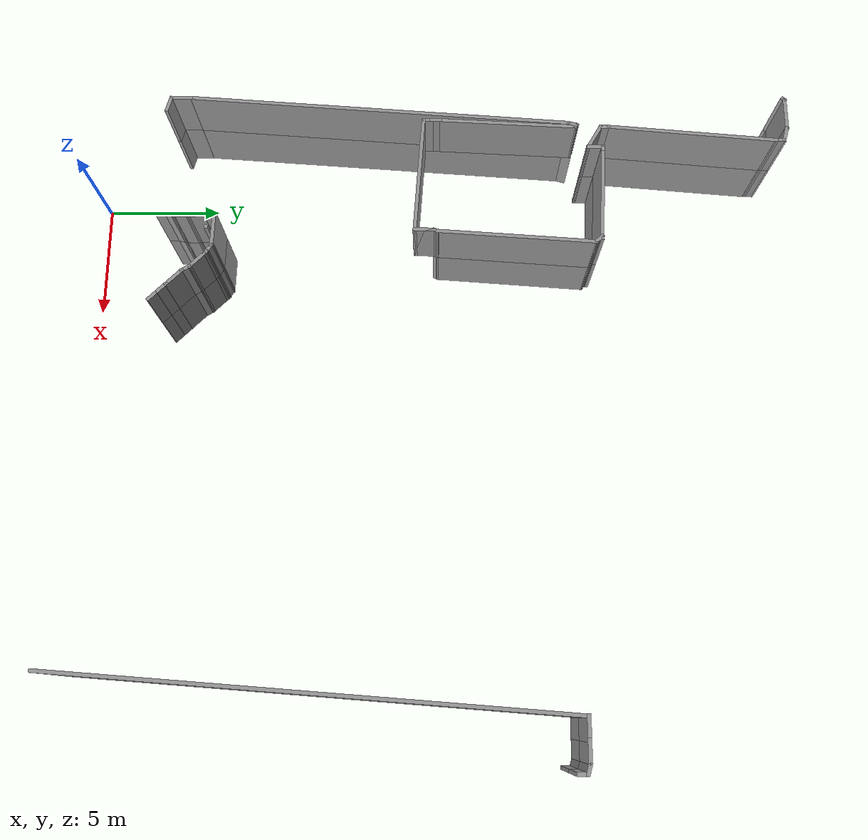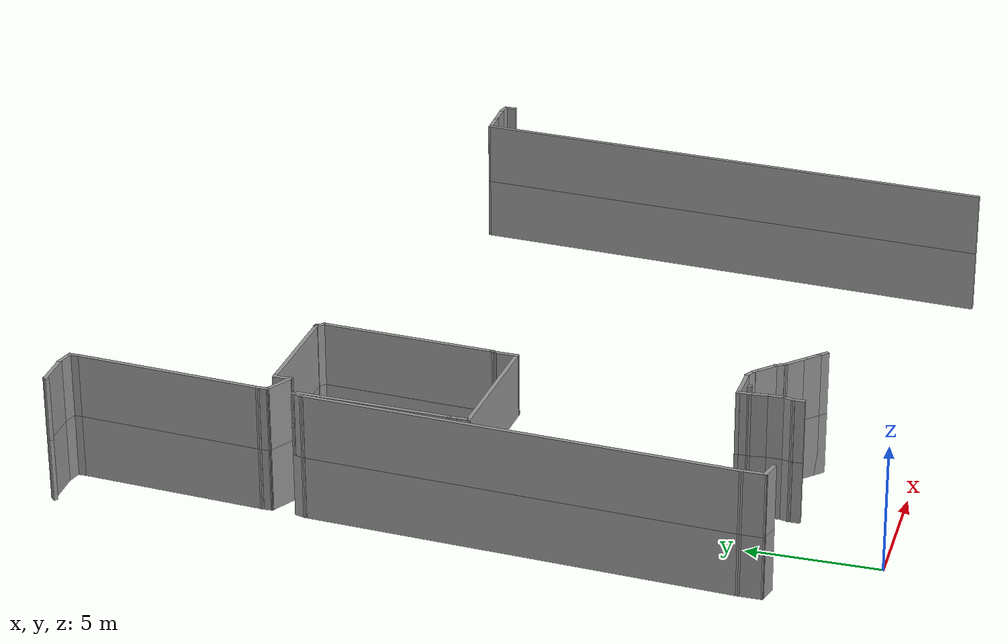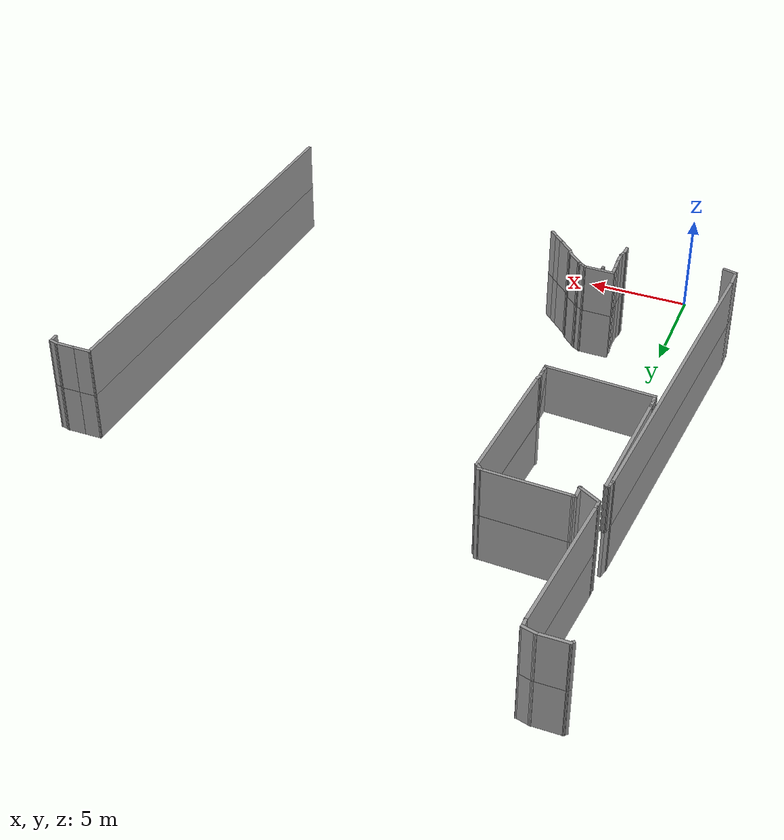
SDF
<sdf version="1.7">
 <model name="EnvDC00">
  <pose>8.4191 -5.62635 0 0 -0 0</pose>
  <link name="Wall_100">
   <collision name="Wall_100_Collision">
    <geometry><box><size>0.15 0.15 2.5</size></box></geometry>
    <pose>0 0 1.25 0 -0 0</pose>
   </collision>
   <visual name="Wall_100_Visual">
    <pose>0 0 1.25 0 -0 0</pose>
    <geometry><box><size>0.15 0.15 2.5</size></box></geometry>
    <material>
     <script><uri>file://media/materials/scripts/gazebo.material</uri><name>Gazebo/Grey</name></script>
     <ambient>1 1 1 1</ambient>
    </material>
    <meta><layer>0</layer></meta>
   </visual>
   <pose>-5.32892 11.2593 0 0 -0 0</pose>
  </link>
  <link name="Wall_102">
   <collision name="Wall_102_Collision">
    <geometry><box><size>0.5 0.15 2.5</size></box></geometry>
    <pose>0 0 1.25 0 -0 0</pose>
   </collision>
   <visual name="Wall_102_Visual">
    <pose>0 0 1.25 0 -0 0</pose>
    <geometry><box><size>0.5 0.15 2.5</size></box></geometry>
    <material>
     <script><uri>file://media/materials/scripts/gazebo.material</uri><name>Gazebo/Grey</name></script>
     <ambient>1 1 1 1</ambient>
    </material>
    <meta><layer>0</layer></meta>
   </visual>
   <pose>-5.88941 11.3173 0 0 -0 -1.5708</pose>
  </link>
  <link name="Wall_103">
   <collision name="Wall_103_Collision">
    <geometry><box><size>0.813803 0.15 2.5</size></box></geometry>
    <pose>0 0 1.25 0 -0 0</pose>
   </collision>
   <visual name="Wall_103_Visual">
    <pose>0 0 1.25 0 -0 0</pose>
    <geometry><box><size>0.813803 0.15 2.5</size></box></geometry>
    <material>
     <script><uri>file://media/materials/scripts/gazebo.material</uri><name>Gazebo/Grey</name></script>
     <ambient>1 1 1 1</ambient>
    </material>
    <meta><layer>0</layer></meta>
   </visual>
   <pose>-5.86023 10.8116 0 0 -0 -1.48755</pose>
  </link>
  <link name="Wall_104">
   <collision name="Wall_104_Collision">
    <geometry><box><size>0.75 0.15 2.5</size></box></geometry>
    <pose>0 0 1.25 0 -0 0</pose>
   </collision>
   <visual name="Wall_104_Visual">
    <pose>0 0 1.25 0 -0 0</pose>
    <geometry><box><size>0.75 0.15 2.5</size></box></geometry>
    <material>
     <script><uri>file://media/materials/scripts/gazebo.material</uri><name>Gazebo/Grey</name></script>
     <ambient>1 1 1 1</ambient>
    </material>
    <meta><layer>0</layer></meta>
   </visual>
   <pose>-5.83264 10.1793 0 0 -0 -1.5708</pose>
  </link>
  <link name="Wall_105">
   <collision name="Wall_105_Collision">
    <geometry><box><size>0.501524 0.15 2.5</size></box></geometry>
    <pose>0 0 1.25 0 -0 0</pose>
   </collision>
   <visual name="Wall_105_Visual">
    <pose>0 0 1.25 0 -0 0</pose>
    <geometry><box><size>0.501524 0.15 2.5</size></box></geometry>
    <material>
     <script><uri>file://media/materials/scripts/gazebo.material</uri><name>Gazebo/Grey</name></script>
     <ambient>1 1 1 1</ambient>
    </material>
    <meta><layer>0</layer></meta>
   </visual>
   <pose>-5.87793 9.70942 0 0 -0 -1.83143</pose>
  </link>
  <link name="Wall_106">
   <collision name="Wall_106_Collision">
    <geometry><box><size>0.5 0.15 2.5</size></box></geometry>
    <pose>0 0 1.25 0 -0 0</pose>
   </collision>
   <visual name="Wall_106_Visual">
    <pose>0 0 1.25 0 -0 0</pose>
    <geometry><box><size>0.5 0.15 2.5</size></box></geometry>
    <material>
     <script><uri>file://media/materials/scripts/gazebo.material</uri><name>Gazebo/Grey</name></script>
     <ambient>1 1 1 1</ambient>
    </material>
    <meta><layer>0</layer></meta>
   </visual>
   <pose>-5.92322 9.3646 0 0 -0 -1.5708</pose>
  </link>
  <link name="Wall_112">
   <collision name="Wall_112_Collision">
    <geometry><box><size>0.75 0.15 2.5</size></box></geometry>
    <pose>0 0 1.25 0 -0 0</pose>
   </collision>
   <visual name="Wall_112_Visual">
    <pose>0 0 1.25 0 -0 0</pose>
    <geometry><box><size>0.75 0.15 2.5</size></box></geometry>
    <material>
     <script><uri>file://media/materials/scripts/gazebo.material</uri><name>Gazebo/Grey</name></script>
     <ambient>1 1 1 1</ambient>
    </material>
    <meta><layer>0</layer></meta>
   </visual>
   <pose>-11.1086 9.30614 0 0 -0 2.87979</pose>
  </link>
  <link name="Wall_114">
   <collision name="Wall_114_Collision">
    <geometry><box><size>0.5 0.15 2.5</size></box></geometry>
    <pose>0 0 1.25 0 -0 0</pose>
   </collision>
   <visual name="Wall_114_Visual">
    <pose>0 0 1.25 0 -0 0</pose>
    <geometry><box><size>0.5 0.15 2.5</size></box></geometry>
    <material>
     <script><uri>file://media/materials/scripts/gazebo.material</uri><name>Gazebo/Grey</name></script>
     <ambient>1 1 1 1</ambient>
    </material>
    <meta><layer>0</layer></meta>
   </visual>
   <pose>-10.2177 26.6696 0 0 -0 -1.8326</pose>
  </link>
  <link name="Wall_115">
   <collision name="Wall_115_Collision">
    <geometry><box><size>16.4563 0.15 2.5</size></box></geometry>
    <pose>0 0 1.25 0 -0 0</pose>
   </collision>
   <visual name="Wall_115_Visual">
    <pose>0 0 1.25 0 -0 0</pose>
    <geometry><box><size>16.4563 0.15 2.5</size></box></geometry>
    <material>
     <script><uri>file://media/materials/scripts/gazebo.material</uri><name>Gazebo/Grey</name></script>
     <ambient>1 1 1 1</ambient>
    </material>
    <meta><layer>0</layer></meta>
   </visual>
   <pose>-10.8307 18.3672 0 0 -0 -1.64048</pose>
  </link>
  <link name="Wall_116">
   <collision name="Wall_116_Collision">
    <geometry><box><size>1 0.15 2.5</size></box></geometry>
    <pose>0 0 1.25 0 -0 0</pose>
   </collision>
   <visual name="Wall_116_Visual">
    <pose>0 0 1.25 0 -0 0</pose>
    <geometry><box><size>1 0.15 2.5</size></box></geometry>
    <material>
     <script><uri>file://media/materials/scripts/gazebo.material</uri><name>Gazebo/Grey</name></script>
     <ambient>1 1 1 1</ambient>
    </material>
    <meta><layer>0</layer></meta>
   </visual>
   <pose>-11.3984 9.80879 0 0 -0 -1.5708</pose>
  </link>
  <link name="Wall_118">
   <collision name="Wall_118_Collision">
    <geometry><box><size>0.5 0.15 2.5</size></box></geometry>
    <pose>0 0 1.25 0 -0 0</pose>
   </collision>
   <visual name="Wall_118_Visual">
    <pose>0 0 1.25 0 -0 0</pose>
    <geometry><box><size>0.5 0.15 2.5</size></box></geometry>
    <material>
     <script><uri>file://media/materials/scripts/gazebo.material</uri><name>Gazebo/Grey</name></script>
     <ambient>1 1 1 1</ambient>
    </material>
    <meta><layer>0</layer></meta>
   </visual>
   <pose>-10.0854 28.0428 0 0 -0 1.5708</pose>
  </link>
  <link name="Wall_119">
   <collision name="Wall_119_Collision">
    <geometry><box><size>7.29114 0.15 2.5</size></box></geometry>
    <pose>0 0 1.25 0 -0 0</pose>
   </collision>
   <visual name="Wall_119_Visual">
    <pose>0 0 1.25 0 -0 0</pose>
    <geometry><box><size>7.29114 0.15 2.5</size></box></geometry>
    <material>
     <script><uri>file://media/materials/scripts/gazebo.material</uri><name>Gazebo/Grey</name></script>
     <ambient>1 1 1 1</ambient>
    </material>
    <meta><layer>0</layer></meta>
   </visual>
   <pose>-9.78492 31.7757 0 0 -0 1.48653</pose>
  </link>
  <link name="Wall_120">
   <collision name="Wall_120_Collision">
    <geometry><box><size>0.5 0.15 2.5</size></box></geometry>
    <pose>0 0 1.25 0 -0 0</pose>
   </collision>
   <visual name="Wall_120_Visual">
    <pose>0 0 1.25 0 -0 0</pose>
    <geometry><box><size>0.5 0.15 2.5</size></box></geometry>
    <material>
     <script><uri>file://media/materials/scripts/gazebo.material</uri><name>Gazebo/Grey</name></script>
     <ambient>1 1 1 1</ambient>
    </material>
    <meta><layer>0</layer></meta>
   </visual>
   <pose>-9.4844 35.5086 0 0 -0 1.5708</pose>
  </link>
  <link name="Wall_122">
   <collision name="Wall_122_Collision">
    <geometry><box><size>0.75 0.15 2.5</size></box></geometry>
    <pose>0 0 1.25 0 -0 0</pose>
   </collision>
   <visual name="Wall_122_Visual">
    <pose>0 0 1.25 0 -0 0</pose>
    <geometry><box><size>0.75 0.15 2.5</size></box></geometry>
    <material>
     <script><uri>file://media/materials/scripts/gazebo.material</uri><name>Gazebo/Grey</name></script>
     <ambient>1 1 1 1</ambient>
    </material>
    <meta><layer>0</layer></meta>
   </visual>
   <pose>-9.77418 35.7612 0 0 -0 2.87979</pose>
  </link>
  <link name="Wall_123">
   <collision name="Wall_123_Collision">
    <geometry><box><size>1.5 0.15 2.5</size></box></geometry>
    <pose>0 0 1.25 0 -0 0</pose>
   </collision>
   <visual name="Wall_123_Visual">
    <pose>0 0 1.25 0 -0 0</pose>
    <geometry><box><size>1.5 0.15 2.5</size></box></geometry>
    <material>
     <script><uri>file://media/materials/scripts/gazebo.material</uri><name>Gazebo/Grey</name></script>
     <ambient>1 1 1 1</ambient>
    </material>
    <meta><layer>0</layer></meta>
   </visual>
   <pose>-10.739 35.8389 0 0 -0 3.14159</pose>
  </link>
  <link name="Wall_124">
   <collision name="Wall_124_Collision">
    <geometry><box><size>0.25 0.15 2.5</size></box></geometry>
    <pose>0 0 1.25 0 -0 0</pose>
   </collision>
   <visual name="Wall_124_Visual">
    <pose>0 0 1.25 0 -0 0</pose>
    <geometry><box><size>0.25 0.15 2.5</size></box></geometry>
    <material>
     <script><uri>file://media/materials/scripts/gazebo.material</uri><name>Gazebo/Grey</name></script>
     <ambient>1 1 1 1</ambient>
    </material>
    <meta><layer>0</layer></meta>
   </visual>
   <pose>-11.4493 35.8035 0 0 -0 -2.35619</pose>
  </link>
  <link name="Wall_254">
   <collision name="Wall_254_Collision">
    <geometry><box><size>1.25 0.15 2.5</size></box></geometry>
    <pose>0 0 1.25 0 -0 0</pose>
   </collision>
   <visual name="Wall_254_Visual">
    <pose>0 0 1.25 0 -0 0</pose>
    <geometry><box><size>1.25 0.15 2.5</size></box></geometry>
    <material>
     <script><uri>file://media/materials/scripts/gazebo.material</uri><name>Gazebo/Grey</name></script>
     <ambient>1 1 1 1</ambient>
    </material>
    <meta><layer>0</layer></meta>
   </visual>
   <pose>-9.60913 27.5928 0 0 -0 -0.523599</pose>
  </link>
  <link name="Wall_255">
   <collision name="Wall_255_Collision">
    <geometry><box><size>0.75 0.15 2.5</size></box></geometry>
    <pose>0 0 1.25 0 -0 0</pose>
   </collision>
   <visual name="Wall_255_Visual">
    <pose>0 0 1.25 0 -0 0</pose>
    <geometry><box><size>0.75 0.15 2.5</size></box></geometry>
    <material>
     <script><uri>file://media/materials/scripts/gazebo.material</uri><name>Gazebo/Grey</name></script>
     <ambient>1 1 1 1</ambient>
    </material>
    <meta><layer>0</layer></meta>
   </visual>
   <pose>-9.13281 27.6178 0 0 -0 1.5708</pose>
  </link>
  <link name="Wall_256">
   <collision name="Wall_256_Collision">
    <geometry><box><size>0.25 0.15 2.5</size></box></geometry>
    <pose>0 0 1.25 0 -0 0</pose>
   </collision>
   <visual name="Wall_256_Visual">
    <pose>0 0 1.25 0 -0 0</pose>
    <geometry><box><size>0.25 0.15 2.5</size></box></geometry>
    <material>
     <script><uri>file://media/materials/scripts/gazebo.material</uri><name>Gazebo/Grey</name></script>
     <ambient>1 1 1 1</ambient>
    </material>
    <meta><layer>0</layer></meta>
   </visual>
   <pose>-9.08281 27.9178 0 0 -0 0</pose>
  </link>
  <link name="Wall_257">
   <collision name="Wall_257_Collision">
    <geometry><box><size>4.20657 0.15 2.5</size></box></geometry>
    <pose>0 0 1.25 0 -0 0</pose>
   </collision>
   <visual name="Wall_257_Visual">
    <pose>0 0 1.25 0 -0 0</pose>
    <geometry><box><size>4.20657 0.15 2.5</size></box></geometry>
    <material>
     <script><uri>file://media/materials/scripts/gazebo.material</uri><name>Gazebo/Grey</name></script>
     <ambient>1 1 1 1</ambient>
    </material>
    <meta><layer>0</layer></meta>
   </visual>
   <pose>-7.00626 27.834 0 0 -0 -0.041325</pose>
  </link>
  <link name="Wall_258">
   <collision name="Wall_258_Collision">
    <geometry><box><size>0.25 0.15 2.5</size></box></geometry>
    <pose>0 0 1.25 0 -0 0</pose>
   </collision>
   <visual name="Wall_258_Visual">
    <pose>0 0 1.25 0 -0 0</pose>
    <geometry><box><size>0.25 0.15 2.5</size></box></geometry>
    <material>
     <script><uri>file://media/materials/scripts/gazebo.material</uri><name>Gazebo/Grey</name></script>
     <ambient>1 1 1 1</ambient>
    </material>
    <meta><layer>0</layer></meta>
   </visual>
   <pose>-4.9297 27.7502 0 0 -0 0</pose>
  </link>
  <link name="Wall_260">
   <collision name="Wall_260_Collision">
    <geometry><box><size>0.5 0.15 2.5</size></box></geometry>
    <pose>0 0 1.25 0 -0 0</pose>
   </collision>
   <visual name="Wall_260_Visual">
    <pose>0 0 1.25 0 -0 0</pose>
    <geometry><box><size>0.5 0.15 2.5</size></box></geometry>
    <material>
     <script><uri>file://media/materials/scripts/gazebo.material</uri><name>Gazebo/Grey</name></script>
     <ambient>1 1 1 1</ambient>
    </material>
    <meta><layer>0</layer></meta>
   </visual>
   <pose>-4.85596 27.6265 0 0 -0 -0.785398</pose>
  </link>
  <link name="Wall_261">
   <collision name="Wall_261_Collision">
    <geometry><box><size>6.76321 0.15 2.5</size></box></geometry>
    <pose>0 0 1.25 0 -0 0</pose>
   </collision>
   <visual name="Wall_261_Visual">
    <pose>0 0 1.25 0 -0 0</pose>
    <geometry><box><size>6.76321 0.15 2.5</size></box></geometry>
    <material>
     <script><uri>file://media/materials/scripts/gazebo.material</uri><name>Gazebo/Grey</name></script>
     <ambient>1 1 1 1</ambient>
    </material>
    <meta><layer>0</layer></meta>
   </visual>
   <pose>-4.96918 24.2046 0 0 -0 -1.64252</pose>
  </link>
  <link name="Wall_262">
   <collision name="Wall_262_Collision">
    <geometry><box><size>0.25 0.15 2.5</size></box></geometry>
    <pose>0 0 1.25 0 -0 0</pose>
   </collision>
   <visual name="Wall_262_Visual">
    <pose>0 0 1.25 0 -0 0</pose>
    <geometry><box><size>0.25 0.15 2.5</size></box></geometry>
    <material>
     <script><uri>file://media/materials/scripts/gazebo.material</uri><name>Gazebo/Grey</name></script>
     <ambient>1 1 1 1</ambient>
    </material>
    <meta><layer>0</layer></meta>
   </visual>
   <pose>-5.23115 20.8632 0 0 -0 -2.0944</pose>
  </link>
  <link name="Wall_269">
   <collision name="Wall_269_Collision">
    <geometry><box><size>0.5 0.15 2.5</size></box></geometry>
    <pose>0 0 1.25 0 -0 0</pose>
   </collision>
   <visual name="Wall_269_Visual">
    <pose>0 0 1.25 0 -0 0</pose>
    <geometry><box><size>0.5 0.15 2.5</size></box></geometry>
    <material>
     <script><uri>file://media/materials/scripts/gazebo.material</uri><name>Gazebo/Grey</name></script>
     <ambient>1 1 1 1</ambient>
    </material>
    <meta><layer>1</layer></meta>
   </visual>
   <pose>16.2758 26.2797 2.5 0 -0 -1.5708</pose>
  </link>
  <link name="Wall_270">
   <collision name="Wall_270_Collision">
    <geometry><box><size>0.5 0.15 2.5</size></box></geometry>
    <pose>0 0 1.25 0 -0 0</pose>
   </collision>
   <visual name="Wall_270_Visual">
    <pose>0 0 1.25 0 -0 0</pose>
    <geometry><box><size>0.5 0.15 2.5</size></box></geometry>
    <material>
     <script><uri>file://media/materials/scripts/gazebo.material</uri><name>Gazebo/Grey</name></script>
     <ambient>1 1 1 1</ambient>
    </material>
    <meta><layer>1</layer></meta>
   </visual>
   <pose>16.1067 26.5 2.5 0 -0 2.87979</pose>
  </link>
  <link name="Wall_271">
   <collision name="Wall_271_Collision">
    <geometry><box><size>1 0.15 2.5</size></box></geometry>
    <pose>0 0 1.25 0 -0 0</pose>
   </collision>
   <visual name="Wall_271_Visual">
    <pose>0 0 1.25 0 -0 0</pose>
    <geometry><box><size>1 0.15 2.5</size></box></geometry>
    <material>
     <script><uri>file://media/materials/scripts/gazebo.material</uri><name>Gazebo/Grey</name></script>
     <ambient>1 1 1 1</ambient>
    </material>
    <meta><layer>1</layer></meta>
   </visual>
   <pose>15.5127 26.5453 2.5 0 -0 3.14159</pose>
  </link>
  <link name="Wall_272">
   <collision name="Wall_272_Collision">
    <geometry><box><size>1 0.15 2.5</size></box></geometry>
    <pose>0 0 1.25 0 -0 0</pose>
   </collision>
   <visual name="Wall_272_Visual">
    <pose>0 0 1.25 0 -0 0</pose>
    <geometry><box><size>1 0.15 2.5</size></box></geometry>
    <material>
     <script><uri>file://media/materials/scripts/gazebo.material</uri><name>Gazebo/Grey</name></script>
     <ambient>1 1 1 1</ambient>
    </material>
    <meta><layer>1</layer></meta>
   </visual>
   <pose>14.6627 26.5453 2.5 0 -0 3.14159</pose>
  </link>
  <link name="Wall_273">
   <collision name="Wall_273_Collision">
    <geometry><box><size>20.8787 0.15 2.5</size></box></geometry>
    <pose>0 0 1.25 0 -0 0</pose>
   </collision>
   <visual name="Wall_273_Visual">
    <pose>0 0 1.25 0 -0 0</pose>
    <geometry><box><size>20.8787 0.15 2.5</size></box></geometry>
    <material>
     <script><uri>file://media/materials/scripts/gazebo.material</uri><name>Gazebo/Grey</name></script>
     <ambient>1 1 1 1</ambient>
    </material>
    <meta><layer>1</layer></meta>
   </visual>
   <pose>13.477 16.2089 2.5 0 -0 -1.64426</pose>
  </link>
  <link name="Wall_300">
   <collision name="Wall_300_Collision">
    <geometry><box><size>0.5 0.15 2.5</size></box></geometry>
    <pose>0 0 1.25 0 -0 0</pose>
   </collision>
   <visual name="Wall_300_Visual">
    <pose>0 0 1.25 0 -0 0</pose>
    <geometry><box><size>0.5 0.15 2.5</size></box></geometry>
    <material>
     <script><uri>file://media/materials/scripts/gazebo.material</uri><name>Gazebo/Grey</name></script>
     <ambient>1 1 1 1</ambient>
    </material>
    <meta><layer>1</layer></meta>
   </visual>
   <pose>-2.20785 9.22536 2.5 0 -0 2.35619</pose>
  </link>
  <link name="Wall_301">
   <collision name="Wall_301_Collision">
    <geometry><box><size>0.75 0.15 2.5</size></box></geometry>
    <pose>0 0 1.25 0 -0 0</pose>
   </collision>
   <visual name="Wall_301_Visual">
    <pose>0 0 1.25 0 -0 0</pose>
    <geometry><box><size>0.75 0.15 2.5</size></box></geometry>
    <material>
     <script><uri>file://media/materials/scripts/gazebo.material</uri><name>Gazebo/Grey</name></script>
     <ambient>1 1 1 1</ambient>
    </material>
    <meta><layer>1</layer></meta>
   </visual>
   <pose>-2.54372 9.56123 2.5 0 -0 2.35619</pose>
  </link>
  <link name="Wall_302">
   <collision name="Wall_302_Collision">
    <geometry><box><size>1 0.15 2.5</size></box></geometry>
    <pose>0 0 1.25 0 -0 0</pose>
   </collision>
   <visual name="Wall_302_Visual">
    <pose>0 0 1.25 0 -0 0</pose>
    <geometry><box><size>1 0.15 2.5</size></box></geometry>
    <material>
     <script><uri>file://media/materials/scripts/gazebo.material</uri><name>Gazebo/Grey</name></script>
     <ambient>1 1 1 1</ambient>
    </material>
    <meta><layer>1</layer></meta>
   </visual>
   <pose>-3.05637 10.0739 2.5 0 -0 2.35619</pose>
  </link>
  <link name="Wall_303">
   <collision name="Wall_303_Collision">
    <geometry><box><size>0.5 0.15 2.5</size></box></geometry>
    <pose>0 0 1.25 0 -0 0</pose>
   </collision>
   <visual name="Wall_303_Visual">
    <pose>0 0 1.25 0 -0 0</pose>
    <geometry><box><size>0.5 0.15 2.5</size></box></geometry>
    <material>
     <script><uri>file://media/materials/scripts/gazebo.material</uri><name>Gazebo/Grey</name></script>
     <ambient>1 1 1 1</ambient>
    </material>
    <meta><layer>1</layer></meta>
   </visual>
   <pose>-3.44439 10.526 2.5 0 -0 2.0944</pose>
  </link>
  <link name="Wall_304">
   <collision name="Wall_304_Collision">
    <geometry><box><size>1 0.15 2.5</size></box></geometry>
    <pose>0 0 1.25 0 -0 0</pose>
   </collision>
   <visual name="Wall_304_Visual">
    <pose>0 0 1.25 0 -0 0</pose>
    <geometry><box><size>1 0.15 2.5</size></box></geometry>
    <material>
     <script><uri>file://media/materials/scripts/gazebo.material</uri><name>Gazebo/Grey</name></script>
     <ambient>1 1 1 1</ambient>
    </material>
    <meta><layer>1</layer></meta>
   </visual>
   <pose>-3.83242 10.978 2.5 0 -0 2.35619</pose>
  </link>
  <link name="Wall_305">
   <collision name="Wall_305_Collision">
    <geometry><box><size>0.25 0.15 2.5</size></box></geometry>
    <pose>0 0 1.25 0 -0 0</pose>
   </collision>
   <visual name="Wall_305_Visual">
    <pose>0 0 1.25 0 -0 0</pose>
    <geometry><box><size>0.25 0.15 2.5</size></box></geometry>
    <material>
     <script><uri>file://media/materials/scripts/gazebo.material</uri><name>Gazebo/Grey</name></script>
     <ambient>1 1 1 1</ambient>
    </material>
    <meta><layer>1</layer></meta>
   </visual>
   <pose>-4.16829 11.3139 2.5 0 -0 2.35619</pose>
  </link>
  <link name="Wall_306">
   <collision name="Wall_306_Collision">
    <geometry><box><size>0.5 0.15 2.5</size></box></geometry>
    <pose>0 0 1.25 0 -0 0</pose>
   </collision>
   <visual name="Wall_306_Visual">
    <pose>0 0 1.25 0 -0 0</pose>
    <geometry><box><size>0.5 0.15 2.5</size></box></geometry>
    <material>
     <script><uri>file://media/materials/scripts/gazebo.material</uri><name>Gazebo/Grey</name></script>
     <ambient>1 1 1 1</ambient>
    </material>
    <meta><layer>1</layer></meta>
   </visual>
   <pose>-4.3552 11.4368 2.5 0 -0 2.61799</pose>
  </link>
  <link name="Wall_307">
   <collision name="Wall_307_Collision">
    <geometry><box><size>1.54368 0.15 2.5</size></box></geometry>
    <pose>0 0 1.25 0 -0 0</pose>
   </collision>
   <visual name="Wall_307_Visual">
    <pose>0 0 1.25 0 -0 0</pose>
    <geometry><box><size>1.54368 0.15 2.5</size></box></geometry>
    <material>
     <script><uri>file://media/materials/scripts/gazebo.material</uri><name>Gazebo/Grey</name></script>
     <ambient>1 1 1 1</ambient>
    </material>
    <meta><layer>1</layer></meta>
   </visual>
   <pose>-5.20338 11.5416 2.5 0 -0 3.1167</pose>
  </link>
  <link name="Wall_308">
   <collision name="Wall_308_Collision">
    <geometry><box><size>0.15 0.15 2.5</size></box></geometry>
    <pose>0 0 1.25 0 -0 0</pose>
   </collision>
   <visual name="Wall_308_Visual">
    <pose>0 0 1.25 0 -0 0</pose>
    <geometry><box><size>0.15 0.15 2.5</size></box></geometry>
    <material>
     <script><uri>file://media/materials/scripts/gazebo.material</uri><name>Gazebo/Grey</name></script>
     <ambient>1 1 1 1</ambient>
    </material>
    <meta><layer>1</layer></meta>
   </visual>
   <pose>-5.32892 11.2593 2.5 0 -0 0</pose>
  </link>
  <link name="Wall_309">
   <collision name="Wall_309_Collision">
    <geometry><box><size>0.5 0.15 2.5</size></box></geometry>
    <pose>0 0 1.25 0 -0 0</pose>
   </collision>
   <visual name="Wall_309_Visual">
    <pose>0 0 1.25 0 -0 0</pose>
    <geometry><box><size>0.5 0.15 2.5</size></box></geometry>
    <material>
     <script><uri>file://media/materials/scripts/gazebo.material</uri><name>Gazebo/Grey</name></script>
     <ambient>1 1 1 1</ambient>
    </material>
    <meta><layer>1</layer></meta>
   </visual>
   <pose>-5.88941 11.3173 2.5 0 -0 -1.5708</pose>
  </link>
  <link name="Wall_310">
   <collision name="Wall_310_Collision">
    <geometry><box><size>0.813803 0.15 2.5</size></box></geometry>
    <pose>0 0 1.25 0 -0 0</pose>
   </collision>
   <visual name="Wall_310_Visual">
    <pose>0 0 1.25 0 -0 0</pose>
    <geometry><box><size>0.813803 0.15 2.5</size></box></geometry>
    <material>
     <script><uri>file://media/materials/scripts/gazebo.material</uri><name>Gazebo/Grey</name></script>
     <ambient>1 1 1 1</ambient>
    </material>
    <meta><layer>1</layer></meta>
   </visual>
   <pose>-5.86023 10.8116 2.5 0 -0 -1.48755</pose>
  </link>
  <link name="Wall_311">
   <collision name="Wall_311_Collision">
    <geometry><box><size>0.75 0.15 2.5</size></box></geometry>
    <pose>0 0 1.25 0 -0 0</pose>
   </collision>
   <visual name="Wall_311_Visual">
    <pose>0 0 1.25 0 -0 0</pose>
    <geometry><box><size>0.75 0.15 2.5</size></box></geometry>
    <material>
     <script><uri>file://media/materials/scripts/gazebo.material</uri><name>Gazebo/Grey</name></script>
     <ambient>1 1 1 1</ambient>
    </material>
    <meta><layer>1</layer></meta>
   </visual>
   <pose>-5.83264 10.1793 2.5 0 -0 -1.5708</pose>
  </link>
  <link name="Wall_312">
   <collision name="Wall_312_Collision">
    <geometry><box><size>0.501524 0.15 2.5</size></box></geometry>
    <pose>0 0 1.25 0 -0 0</pose>
   </collision>
   <visual name="Wall_312_Visual">
    <pose>0 0 1.25 0 -0 0</pose>
    <geometry><box><size>0.501524 0.15 2.5</size></box></geometry>
    <material>
     <script><uri>file://media/materials/scripts/gazebo.material</uri><name>Gazebo/Grey</name></script>
     <ambient>1 1 1 1</ambient>
    </material>
    <meta><layer>1</layer></meta>
   </visual>
   <pose>-5.87793 9.70942 2.5 0 -0 -1.83143</pose>
  </link>
  <link name="Wall_313">
   <collision name="Wall_313_Collision">
    <geometry><box><size>0.5 0.15 2.5</size></box></geometry>
    <pose>0 0 1.25 0 -0 0</pose>
   </collision>
   <visual name="Wall_313_Visual">
    <pose>0 0 1.25 0 -0 0</pose>
    <geometry><box><size>0.5 0.15 2.5</size></box></geometry>
    <material>
     <script><uri>file://media/materials/scripts/gazebo.material</uri><name>Gazebo/Grey</name></script>
     <ambient>1 1 1 1</ambient>
    </material>
    <meta><layer>1</layer></meta>
   </visual>
   <pose>-5.92322 9.3646 2.5 0 -0 -1.5708</pose>
  </link>
  <link name="Wall_317">
   <collision name="Wall_317_Collision">
    <geometry><box><size>0.75 0.15 2.5</size></box></geometry>
    <pose>0 0 1.25 0 -0 0</pose>
   </collision>
   <visual name="Wall_317_Visual">
    <pose>0 0 1.25 0 -0 0</pose>
    <geometry><box><size>0.75 0.15 2.5</size></box></geometry>
    <material>
     <script><uri>file://media/materials/scripts/gazebo.material</uri><name>Gazebo/Grey</name></script>
     <ambient>1 1 1 1</ambient>
    </material>
    <meta><layer>1</layer></meta>
   </visual>
   <pose>-11.1086 9.30614 2.5 0 -0 2.87979</pose>
  </link>
  <link name="Wall_318">
   <collision name="Wall_318_Collision">
    <geometry><box><size>0.5 0.15 2.5</size></box></geometry>
    <pose>0 0 1.25 0 -0 0</pose>
   </collision>
   <visual name="Wall_318_Visual">
    <pose>0 0 1.25 0 -0 0</pose>
    <geometry><box><size>0.5 0.15 2.5</size></box></geometry>
    <material>
     <script><uri>file://media/materials/scripts/gazebo.material</uri><name>Gazebo/Grey</name></script>
     <ambient>1 1 1 1</ambient>
    </material>
    <meta><layer>1</layer></meta>
   </visual>
   <pose>-10.2177 26.6696 2.5 0 -0 -1.8326</pose>
  </link>
  <link name="Wall_319">
   <collision name="Wall_319_Collision">
    <geometry><box><size>16.4563 0.15 2.5</size></box></geometry>
    <pose>0 0 1.25 0 -0 0</pose>
   </collision>
   <visual name="Wall_319_Visual">
    <pose>0 0 1.25 0 -0 0</pose>
    <geometry><box><size>16.4563 0.15 2.5</size></box></geometry>
    <material>
     <script><uri>file://media/materials/scripts/gazebo.material</uri><name>Gazebo/Grey</name></script>
     <ambient>1 1 1 1</ambient>
    </material>
    <meta><layer>1</layer></meta>
   </visual>
   <pose>-10.8307 18.3672 2.5 0 -0 -1.64048</pose>
  </link>
  <link name="Wall_320">
   <collision name="Wall_320_Collision">
    <geometry><box><size>1 0.15 2.5</size></box></geometry>
    <pose>0 0 1.25 0 -0 0</pose>
   </collision>
   <visual name="Wall_320_Visual">
    <pose>0 0 1.25 0 -0 0</pose>
    <geometry><box><size>1 0.15 2.5</size></box></geometry>
    <material>
     <script><uri>file://media/materials/scripts/gazebo.material</uri><name>Gazebo/Grey</name></script>
     <ambient>1 1 1 1</ambient>
    </material>
    <meta><layer>1</layer></meta>
   </visual>
   <pose>-11.3984 9.80879 2.5 0 -0 -1.5708</pose>
  </link>
  <link name="Wall_321">
   <collision name="Wall_321_Collision">
    <geometry><box><size>0.5 0.15 2.5</size></box></geometry>
    <pose>0 0 1.25 0 -0 0</pose>
   </collision>
   <visual name="Wall_321_Visual">
    <pose>0 0 1.25 0 -0 0</pose>
    <geometry><box><size>0.5 0.15 2.5</size></box></geometry>
    <material>
     <script><uri>file://media/materials/scripts/gazebo.material</uri><name>Gazebo/Grey</name></script>
     <ambient>1 1 1 1</ambient>
    </material>
    <meta><layer>1</layer></meta>
   </visual>
   <pose>-10.0854 28.0428 2.5 0 -0 1.5708</pose>
  </link>
  <link name="Wall_322">
   <collision name="Wall_322_Collision">
    <geometry><box><size>7.29114 0.15 2.5</size></box></geometry>
    <pose>0 0 1.25 0 -0 0</pose>
   </collision>
   <visual name="Wall_322_Visual">
    <pose>0 0 1.25 0 -0 0</pose>
    <geometry><box><size>7.29114 0.15 2.5</size></box></geometry>
    <material>
     <script><uri>file://media/materials/scripts/gazebo.material</uri><name>Gazebo/Grey</name></script>
     <ambient>1 1 1 1</ambient>
    </material>
    <meta><layer>1</layer></meta>
   </visual>
   <pose>-9.78492 31.7757 2.5 0 -0 1.48653</pose>
  </link>
  <link name="Wall_323">
   <collision name="Wall_323_Collision">
    <geometry><box><size>0.5 0.15 2.5</size></box></geometry>
    <pose>0 0 1.25 0 -0 0</pose>
   </collision>
   <visual name="Wall_323_Visual">
    <pose>0 0 1.25 0 -0 0</pose>
    <geometry><box><size>0.5 0.15 2.5</size></box></geometry>
    <material>
     <script><uri>file://media/materials/scripts/gazebo.material</uri><name>Gazebo/Grey</name></script>
     <ambient>1 1 1 1</ambient>
    </material>
    <meta><layer>1</layer></meta>
   </visual>
   <pose>-9.4844 35.5086 2.5 0 -0 1.5708</pose>
  </link>
  <link name="Wall_324">
   <collision name="Wall_324_Collision">
    <geometry><box><size>0.75 0.15 2.5</size></box></geometry>
    <pose>0 0 1.25 0 -0 0</pose>
   </collision>
   <visual name="Wall_324_Visual">
    <pose>0 0 1.25 0 -0 0</pose>
    <geometry><box><size>0.75 0.15 2.5</size></box></geometry>
    <material>
     <script><uri>file://media/materials/scripts/gazebo.material</uri><name>Gazebo/Grey</name></script>
     <ambient>1 1 1 1</ambient>
    </material>
    <meta><layer>1</layer></meta>
   </visual>
   <pose>-9.77418 35.7612 2.5 0 -0 2.87979</pose>
  </link>
  <link name="Wall_325">
   <collision name="Wall_325_Collision">
    <geometry><box><size>1.5 0.15 2.5</size></box></geometry>
    <pose>0 0 1.25 0 -0 0</pose>
   </collision>
   <visual name="Wall_325_Visual">
    <pose>0 0 1.25 0 -0 0</pose>
    <geometry><box><size>1.5 0.15 2.5</size></box></geometry>
    <material>
     <script><uri>file://media/materials/scripts/gazebo.material</uri><name>Gazebo/Grey</name></script>
     <ambient>1 1 1 1</ambient>
    </material>
    <meta><layer>1</layer></meta>
   </visual>
   <pose>-10.739 35.8389 2.5 0 -0 3.14159</pose>
  </link>
  <link name="Wall_326">
   <collision name="Wall_326_Collision">
    <geometry><box><size>0.25 0.15 2.5</size></box></geometry>
    <pose>0 0 1.25 0 -0 0</pose>
   </collision>
   <visual name="Wall_326_Visual">
    <pose>0 0 1.25 0 -0 0</pose>
    <geometry><box><size>0.25 0.15 2.5</size></box></geometry>
    <material>
     <script><uri>file://media/materials/scripts/gazebo.material</uri><name>Gazebo/Grey</name></script>
     <ambient>1 1 1 1</ambient>
    </material>
    <meta><layer>1</layer></meta>
   </visual>
   <pose>-11.4493 35.8035 2.5 0 -0 -2.35619</pose>
  </link>
  <link name="Wall_415">
   <collision name="Wall_415_Collision">
    <geometry><box><size>1.25 0.15 2.5</size></box></geometry>
    <pose>0 0 1.25 0 -0 0</pose>
   </collision>
   <visual name="Wall_415_Visual">
    <pose>0 0 1.25 0 -0 0</pose>
    <geometry><box><size>1.25 0.15 2.5</size></box></geometry>
    <material>
     <script><uri>file://media/materials/scripts/gazebo.material</uri><name>Gazebo/Grey</name></script>
     <ambient>1 1 1 1</ambient>
    </material>
    <meta><layer>1</layer></meta>
   </visual>
   <pose>-9.60913 27.5928 2.5 0 -0 -0.523599</pose>
  </link>
  <link name="Wall_416">
   <collision name="Wall_416_Collision">
    <geometry><box><size>0.75 0.15 2.5</size></box></geometry>
    <pose>0 0 1.25 0 -0 0</pose>
   </collision>
   <visual name="Wall_416_Visual">
    <pose>0 0 1.25 0 -0 0</pose>
    <geometry><box><size>0.75 0.15 2.5</size></box></geometry>
    <material>
     <script><uri>file://media/materials/scripts/gazebo.material</uri><name>Gazebo/Grey</name></script>
     <ambient>1 1 1 1</ambient>
    </material>
    <meta><layer>1</layer></meta>
   </visual>
   <pose>-9.13281 27.6178 2.5 0 -0 1.5708</pose>
  </link>
  <link name="Wall_417">
   <collision name="Wall_417_Collision">
    <geometry><box><size>0.25 0.15 2.5</size></box></geometry>
    <pose>0 0 1.25 0 -0 0</pose>
   </collision>
   <visual name="Wall_417_Visual">
    <pose>0 0 1.25 0 -0 0</pose>
    <geometry><box><size>0.25 0.15 2.5</size></box></geometry>
    <material>
     <script><uri>file://media/materials/scripts/gazebo.material</uri><name>Gazebo/Grey</name></script>
     <ambient>1 1 1 1</ambient>
    </material>
    <meta><layer>1</layer></meta>
   </visual>
   <pose>-9.08281 27.9178 2.5 0 -0 0</pose>
  </link>
  <link name="Wall_418">
   <collision name="Wall_418_Collision">
    <geometry><box><size>4.20657 0.15 2.5</size></box></geometry>
    <pose>0 0 1.25 0 -0 0</pose>
   </collision>
   <visual name="Wall_418_Visual">
    <pose>0 0 1.25 0 -0 0</pose>
    <geometry><box><size>4.20657 0.15 2.5</size></box></geometry>
    <material>
     <script><uri>file://media/materials/scripts/gazebo.material</uri><name>Gazebo/Grey</name></script>
     <ambient>1 1 1 1</ambient>
    </material>
    <meta><layer>1</layer></meta>
   </visual>
   <pose>-7.00626 27.834 2.5 0 -0 -0.041325</pose>
  </link>
  <link name="Wall_419">
   <collision name="Wall_419_Collision">
    <geometry><box><size>0.25 0.15 2.5</size></box></geometry>
    <pose>0 0 1.25 0 -0 0</pose>
   </collision>
   <visual name="Wall_419_Visual">
    <pose>0 0 1.25 0 -0 0</pose>
    <geometry><box><size>0.25 0.15 2.5</size></box></geometry>
    <material>
     <script><uri>file://media/materials/scripts/gazebo.material</uri><name>Gazebo/Grey</name></script>
     <ambient>1 1 1 1</ambient>
    </material>
    <meta><layer>1</layer></meta>
   </visual>
   <pose>-4.9297 27.7502 2.5 0 -0 0</pose>
  </link>
  <link name="Wall_420">
   <collision name="Wall_420_Collision">
    <geometry><box><size>0.5 0.15 2.5</size></box></geometry>
    <pose>0 0 1.25 0 -0 0</pose>
   </collision>
   <visual name="Wall_420_Visual">
    <pose>0 0 1.25 0 -0 0</pose>
    <geometry><box><size>0.5 0.15 2.5</size></box></geometry>
    <material>
     <script><uri>file://media/materials/scripts/gazebo.material</uri><name>Gazebo/Grey</name></script>
     <ambient>1 1 1 1</ambient>
    </material>
    <meta><layer>1</layer></meta>
   </visual>
   <pose>-4.85596 27.6265 2.5 0 -0 -0.785398</pose>
  </link>
  <link name="Wall_421">
   <collision name="Wall_421_Collision">
    <geometry><box><size>6.76739 0.15 2.5</size></box></geometry>
    <pose>0 0 1.25 0 -0 0</pose>
   </collision>
   <visual name="Wall_421_Visual">
    <pose>0 0 1.25 0 -0 0</pose>
    <geometry><box><size>6.76739 0.15 2.5</size></box></geometry>
    <material>
     <script><uri>file://media/materials/scripts/gazebo.material</uri><name>Gazebo/Grey</name></script>
     <ambient>1 1 1 1</ambient>
    </material>
    <meta><layer>1</layer></meta>
   </visual>
   <pose>-4.95651 24.2016 2.5 0 -0 -1.63864</pose>
  </link>
  <link name="Wall_422">
   <collision name="Wall_422_Collision">
    <geometry><box><size>0.291098 0.15 2.5</size></box></geometry>
    <pose>0 0 1.25 0 -0 0</pose>
   </collision>
   <visual name="Wall_422_Visual">
    <pose>0 0 1.25 0 -0 0</pose>
    <geometry><box><size>0.291098 0.15 2.5</size></box></geometry>
    <material>
     <script><uri>file://media/materials/scripts/gazebo.material</uri><name>Gazebo/Grey</name></script>
     <ambient>1 1 1 1</ambient>
    </material>
    <meta><layer>1</layer></meta>
   </visual>
   <pose>-5.20581 20.8316 2.5 0 -0 -1.93303</pose>
  </link>
  <link name="Wall_423">
   <collision name="Wall_423_Collision">
    <geometry><box><size>0.25 0.15 2.5</size></box></geometry>
    <pose>0 0 1.25 0 -0 0</pose>
   </collision>
   <visual name="Wall_423_Visual">
    <pose>0 0 1.25 0 -0 0</pose>
    <geometry><box><size>0.25 0.15 2.5</size></box></geometry>
    <material>
     <script><uri>file://media/materials/scripts/gazebo.material</uri><name>Gazebo/Grey</name></script>
     <ambient>1 1 1 1</ambient>
    </material>
    <meta><layer>1</layer></meta>
   </visual>
   <pose>-10.1291 26.8136 2.5 0 -0 -0.523599</pose>
  </link>
  <link name="Wall_424">
   <collision name="Wall_424_Collision">
    <geometry><box><size>5.96949 0.15 2.5</size></box></geometry>
    <pose>0 0 1.25 0 -0 0</pose>
   </collision>
   <visual name="Wall_424_Visual">
    <pose>0 0 1.25 0 -0 0</pose>
    <geometry><box><size>5.96949 0.15 2.5</size></box></geometry>
    <material>
     <script><uri>file://media/materials/scripts/gazebo.material</uri><name>Gazebo/Grey</name></script>
     <ambient>1 1 1 1</ambient>
    </material>
    <meta><layer>1</layer></meta>
   </visual>
   <pose>-10.2282 23.8823 2.5 0 -0 -1.61974</pose>
  </link>
  <link name="Wall_425">
   <collision name="Wall_425_Collision">
    <geometry><box><size>0.5 0.15 2.5</size></box></geometry>
    <pose>0 0 1.25 0 -0 0</pose>
   </collision>
   <visual name="Wall_425_Visual">
    <pose>0 0 1.25 0 -0 0</pose>
    <geometry><box><size>0.5 0.15 2.5</size></box></geometry>
    <material>
     <script><uri>file://media/materials/scripts/gazebo.material</uri><name>Gazebo/Grey</name></script>
     <ambient>1 1 1 1</ambient>
    </material>
    <meta><layer>1</layer></meta>
   </visual>
   <pose>-10.3705 20.8011 2.5 0 -0 -1.5708</pose>
  </link>
  <link name="Wall_427">
   <collision name="Wall_427_Collision">
    <geometry><box><size>0.5 0.15 2.5</size></box></geometry>
    <pose>0 0 1.25 0 -0 0</pose>
   </collision>
   <visual name="Wall_427_Visual">
    <pose>0 0 1.25 0 -0 0</pose>
    <geometry><box><size>0.5 0.15 2.5</size></box></geometry>
    <material>
     <script><uri>file://media/materials/scripts/gazebo.material</uri><name>Gazebo/Grey</name></script>
     <ambient>1 1 1 1</ambient>
    </material>
    <meta><layer>1</layer></meta>
   </visual>
   <pose>-10.3705 20.4511 2.5 0 -0 -1.5708</pose>
  </link>
  <link name="Wall_428">
   <collision name="Wall_428_Collision">
    <geometry><box><size>5.27495 0.15 2.5</size></box></geometry>
    <pose>0 0 1.25 0 -0 0</pose>
   </collision>
   <visual name="Wall_428_Visual">
    <pose>0 0 1.25 0 -0 0</pose>
    <geometry><box><size>5.27495 0.15 2.5</size></box></geometry>
    <material>
     <script><uri>file://media/materials/scripts/gazebo.material</uri><name>Gazebo/Grey</name></script>
     <ambient>1 1 1 1</ambient>
    </material>
    <meta><layer>1</layer></meta>
   </visual>
   <pose>-7.81335 20.1117 2.5 0 -0 -0.064207</pose>
  </link>
  <link name="Wall_429">
   <collision name="Wall_429_Collision">
    <geometry><box><size>0.971759 0.15 2.5</size></box></geometry>
    <pose>0 0 1.25 0 -0 0</pose>
   </collision>
   <visual name="Wall_429_Visual">
    <pose>0 0 1.25 0 -0 0</pose>
    <geometry><box><size>0.971759 0.15 2.5</size></box></geometry>
    <material>
     <script><uri>file://media/materials/scripts/gazebo.material</uri><name>Gazebo/Grey</name></script>
     <ambient>1 1 1 1</ambient>
    </material>
    <meta><layer>1</layer></meta>
   </visual>
   <pose>-5.24348 20.3579 2.5 0 -0 1.53995</pose>
  </link>
  <link name="Wall_430">
   <collision name="Wall_430_Collision">
    <geometry><box><size>0.971759 0.15 2.5</size></box></geometry>
    <pose>0 0 1.25 0 -0 0</pose>
   </collision>
   <visual name="Wall_430_Visual">
    <pose>0 0 1.25 0 -0 0</pose>
    <geometry><box><size>0.971759 0.15 2.5</size></box></geometry>
    <material>
     <script><uri>file://media/materials/scripts/gazebo.material</uri><name>Gazebo/Grey</name></script>
     <ambient>1 1 1 1</ambient>
    </material>
    <meta><layer>1</layer></meta>
   </visual>
   <pose>-5.24348 20.3579 2.5 0 -0 -1.60164</pose>
  </link>
  <link name="Wall_47">
   <collision name="Wall_47_Collision">
    <geometry><box><size>0.5 0.15 2.5</size></box></geometry>
    <pose>0 0 1.25 0 -0 0</pose>
   </collision>
   <visual name="Wall_47_Visual">
    <pose>0 0 1.25 0 -0 0</pose>
    <geometry><box><size>0.5 0.15 2.5</size></box></geometry>
    <material>
     <script><uri>file://media/materials/scripts/gazebo.material</uri><name>Gazebo/Grey</name></script>
     <ambient>1 1 1 1</ambient>
    </material>
    <meta><layer>0</layer></meta>
   </visual>
   <pose>16.2758 26.2797 0 0 -0 -1.5708</pose>
  </link>
  <link name="Wall_49">
   <collision name="Wall_49_Collision">
    <geometry><box><size>0.5 0.15 2.5</size></box></geometry>
    <pose>0 0 1.25 0 -0 0</pose>
   </collision>
   <visual name="Wall_49_Visual">
    <pose>0 0 1.25 0 -0 0</pose>
    <geometry><box><size>0.5 0.15 2.5</size></box></geometry>
    <material>
     <script><uri>file://media/materials/scripts/gazebo.material</uri><name>Gazebo/Grey</name></script>
     <ambient>1 1 1 1</ambient>
    </material>
    <meta><layer>0</layer></meta>
   </visual>
   <pose>16.1067 26.5 0 0 -0 2.87979</pose>
  </link>
  <link name="Wall_50">
   <collision name="Wall_50_Collision">
    <geometry><box><size>1 0.15 2.5</size></box></geometry>
    <pose>0 0 1.25 0 -0 0</pose>
   </collision>
   <visual name="Wall_50_Visual">
    <pose>0 0 1.25 0 -0 0</pose>
    <geometry><box><size>1 0.15 2.5</size></box></geometry>
    <material>
     <script><uri>file://media/materials/scripts/gazebo.material</uri><name>Gazebo/Grey</name></script>
     <ambient>1 1 1 1</ambient>
    </material>
    <meta><layer>0</layer></meta>
   </visual>
   <pose>15.5127 26.5453 0 0 -0 3.14159</pose>
  </link>
  <link name="Wall_51">
   <collision name="Wall_51_Collision">
    <geometry><box><size>1 0.15 2.5</size></box></geometry>
    <pose>0 0 1.25 0 -0 0</pose>
   </collision>
   <visual name="Wall_51_Visual">
    <pose>0 0 1.25 0 -0 0</pose>
    <geometry><box><size>1 0.15 2.5</size></box></geometry>
    <material>
     <script><uri>file://media/materials/scripts/gazebo.material</uri><name>Gazebo/Grey</name></script>
     <ambient>1 1 1 1</ambient>
    </material>
    <meta><layer>0</layer></meta>
   </visual>
   <pose>14.6627 26.5453 0 0 -0 3.14159</pose>
  </link>
  <link name="Wall_56">
   <collision name="Wall_56_Collision">
    <geometry><box><size>20.8787 0.15 2.5</size></box></geometry>
    <pose>0 0 1.25 0 -0 0</pose>
   </collision>
   <visual name="Wall_56_Visual">
    <pose>0 0 1.25 0 -0 0</pose>
    <geometry><box><size>20.8787 0.15 2.5</size></box></geometry>
    <material>
     <script><uri>file://media/materials/scripts/gazebo.material</uri><name>Gazebo/Grey</name></script>
     <ambient>1 1 1 1</ambient>
    </material>
    <meta><layer>0</layer></meta>
   </visual>
   <pose>13.477 16.2089 0 0 -0 -1.64426</pose>
  </link>
  <link name="Wall_89">
   <collision name="Wall_89_Collision">
    <geometry><box><size>0.5 0.15 2.5</size></box></geometry>
    <pose>0 0 1.25 0 -0 0</pose>
   </collision>
   <visual name="Wall_89_Visual">
    <pose>0 0 1.25 0 -0 0</pose>
    <geometry><box><size>0.5 0.15 2.5</size></box></geometry>
    <material>
     <script><uri>file://media/materials/scripts/gazebo.material</uri><name>Gazebo/Grey</name></script>
     <ambient>1 1 1 1</ambient>
    </material>
    <meta><layer>0</layer></meta>
   </visual>
   <pose>-2.20785 9.22536 0 0 -0 2.35619</pose>
  </link>
  <link name="Wall_90">
   <collision name="Wall_90_Collision">
    <geometry><box><size>0.75 0.15 2.5</size></box></geometry>
    <pose>0 0 1.25 0 -0 0</pose>
   </collision>
   <visual name="Wall_90_Visual">
    <pose>0 0 1.25 0 -0 0</pose>
    <geometry><box><size>0.75 0.15 2.5</size></box></geometry>
    <material>
     <script><uri>file://media/materials/scripts/gazebo.material</uri><name>Gazebo/Grey</name></script>
     <ambient>1 1 1 1</ambient>
    </material>
    <meta><layer>0</layer></meta>
   </visual>
   <pose>-2.54372 9.56123 0 0 -0 2.35619</pose>
  </link>
  <link name="Wall_92">
   <collision name="Wall_92_Collision">
    <geometry><box><size>1 0.15 2.5</size></box></geometry>
    <pose>0 0 1.25 0 -0 0</pose>
   </collision>
   <visual name="Wall_92_Visual">
    <pose>0 0 1.25 0 -0 0</pose>
    <geometry><box><size>1 0.15 2.5</size></box></geometry>
    <material>
     <script><uri>file://media/materials/scripts/gazebo.material</uri><name>Gazebo/Grey</name></script>
     <ambient>1 1 1 1</ambient>
    </material>
    <meta><layer>0</layer></meta>
   </visual>
   <pose>-3.05637 10.0739 0 0 -0 2.35619</pose>
  </link>
  <link name="Wall_93">
   <collision name="Wall_93_Collision">
    <geometry><box><size>0.5 0.15 2.5</size></box></geometry>
    <pose>0 0 1.25 0 -0 0</pose>
   </collision>
   <visual name="Wall_93_Visual">
    <pose>0 0 1.25 0 -0 0</pose>
    <geometry><box><size>0.5 0.15 2.5</size></box></geometry>
    <material>
     <script><uri>file://media/materials/scripts/gazebo.material</uri><name>Gazebo/Grey</name></script>
     <ambient>1 1 1 1</ambient>
    </material>
    <meta><layer>0</layer></meta>
   </visual>
   <pose>-3.44439 10.526 0 0 -0 2.0944</pose>
  </link>
  <link name="Wall_94">
   <collision name="Wall_94_Collision">
    <geometry><box><size>1 0.15 2.5</size></box></geometry>
    <pose>0 0 1.25 0 -0 0</pose>
   </collision>
   <visual name="Wall_94_Visual">
    <pose>0 0 1.25 0 -0 0</pose>
    <geometry><box><size>1 0.15 2.5</size></box></geometry>
    <material>
     <script><uri>file://media/materials/scripts/gazebo.material</uri><name>Gazebo/Grey</name></script>
     <ambient>1 1 1 1</ambient>
    </material>
    <meta><layer>0</layer></meta>
   </visual>
   <pose>-3.83242 10.978 0 0 -0 2.35619</pose>
  </link>
  <link name="Wall_95">
   <collision name="Wall_95_Collision">
    <geometry><box><size>0.25 0.15 2.5</size></box></geometry>
    <pose>0 0 1.25 0 -0 0</pose>
   </collision>
   <visual name="Wall_95_Visual">
    <pose>0 0 1.25 0 -0 0</pose>
    <geometry><box><size>0.25 0.15 2.5</size></box></geometry>
    <material>
     <script><uri>file://media/materials/scripts/gazebo.material</uri><name>Gazebo/Grey</name></script>
     <ambient>1 1 1 1</ambient>
    </material>
    <meta><layer>0</layer></meta>
   </visual>
   <pose>-4.16829 11.3139 0 0 -0 2.35619</pose>
  </link>
  <link name="Wall_96">
   <collision name="Wall_96_Collision">
    <geometry><box><size>0.5 0.15 2.5</size></box></geometry>
    <pose>0 0 1.25 0 -0 0</pose>
   </collision>
   <visual name="Wall_96_Visual">
    <pose>0 0 1.25 0 -0 0</pose>
    <geometry><box><size>0.5 0.15 2.5</size></box></geometry>
    <material>
     <script><uri>file://media/materials/scripts/gazebo.material</uri><name>Gazebo/Grey</name></script>
     <ambient>1 1 1 1</ambient>
    </material>
    <meta><layer>0</layer></meta>
   </visual>
   <pose>-4.3552 11.4368 0 0 -0 2.61799</pose>
  </link>
  <link name="Wall_97">
   <collision name="Wall_97_Collision">
    <geometry><box><size>1.54368 0.15 2.5</size></box></geometry>
    <pose>0 0 1.25 0 -0 0</pose>
   </collision>
   <visual name="Wall_97_Visual">
    <pose>0 0 1.25 0 -0 0</pose>
    <geometry><box><size>1.54368 0.15 2.5</size></box></geometry>
    <material>
     <script><uri>file://media/materials/scripts/gazebo.material</uri><name>Gazebo/Grey</name></script>
     <ambient>1 1 1 1</ambient>
    </material>
    <meta><layer>0</layer></meta>
   </visual>
   <pose>-5.20338 11.5416 0 0 -0 3.1167</pose>
  </link>
  <static>1</static>
 </model>
</sdf>
